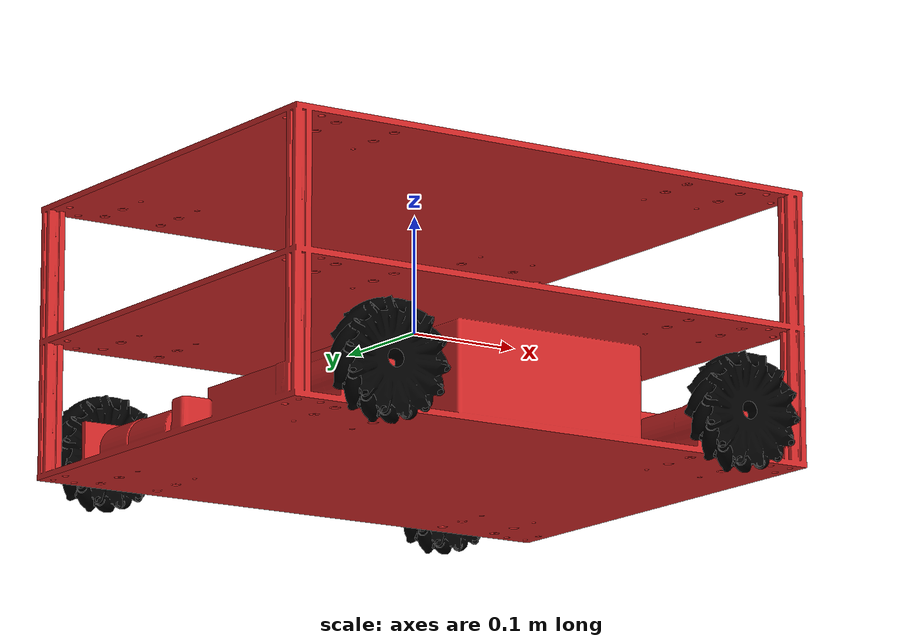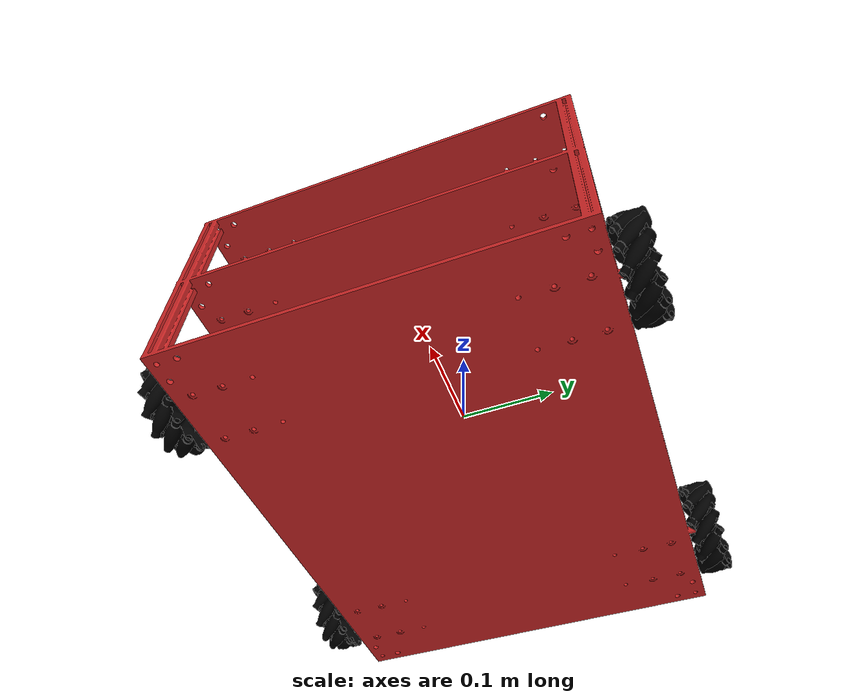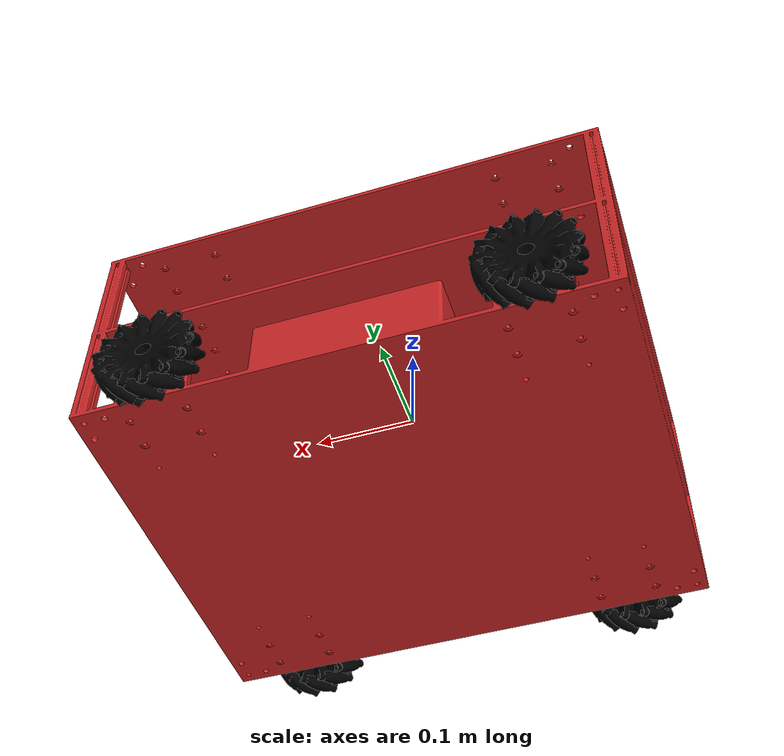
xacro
<?xml version="1.0" ?>
<robot xmlns:xacro="http://www.ros.org/wiki/xacro" name="qs_bot">

  <!-- colors -->
  <material name="black">
    <color rgba="0 0 0 1"/>
  </material>
  <material name="white">
    <color rgba="1 1 1 1"/>
  </material>
  <material name="green">
    <color rgba="0 1 0 1"/>
  </material>

  <xacro:macro name="Transmission_block" params="joint_name">
    <transmission name="${joint_name}_trans">
    <type>transmission_interface/SimpleTransmission</type>
      <joint name="${joint_name}">
        <hardwareInterface>PositionJointInterface</hardwareInterface>
      </joint>
    <actuator name="${joint_name}_motor">
      <mechanicalReduction>1</mechanicalReduction>
    </actuator>
    </transmission>
  </xacro:macro>

  <!-- xacro parameters -->
  <xacro:property name="joint_wheel_match" value="-0.053 0.02 -0.052" />
  <xacro:property name="center_to_left_dis" value="0.2175" />
  <xacro:property name="center_to_right_dis" value="-${center_to_left_dis}" />
  <xacro:property name="center_to_front_dis" value="0.176" />
  <xacro:property name="center_to_back_dis" value="-0.169" />
  <xacro:property name="wheel_mass" value="0.8" />
  <xacro:property name="wheel_height" value="-0.085" />
  <xacro:property name="wheel_width" value="0.046" />
  <xacro:property name="wheel_radius" value="0.0762" />
  <xacro:property name="PI" value="3.1415926535" />
  <xacro:macro name="cylinder_inertia" params ="m r h">
    <inertial>
      <mass value="${m}"/>
        <inertia ixx="${m*(3*r*r+h*h)/12}"  ixy="0.0" ixz="0.0"
            iyy="${m*(3*r*r+h*h)/12}"  iyz= "0.0"
            izz="${m*r*r/2}"/>
        </inertial>
  </xacro:macro>
  <xacro:macro name="default_inertial" params="mass">
    <inertial>
      <mass value="${mass}" />
        <inertia ixx="1" ixy="0" ixz="0" iyy="1" iyz="0" izz="1"/>
    </inertial>
  </xacro:macro>

  <xacro:macro name="omni_steering" params="">
    <gazebo>
      <plugin name="object_controller" filename="libqs_bot_planar_move.so">
        <commandTopic>cmd_vel</commandTopic>
        <odometryTopic>odom</odometryTopic>
        <odometryFrame>odom</odometryFrame>
        <odometryRate>50.0</odometryRate>
        <robotBaseFrame>base_link</robotBaseFrame>
        <publishTf>true</publishTf>
      </plugin>
    </gazebo>
  </xacro:macro>

  <!-- base link -->
  <link name="base_link">
    <visual>
      <origin rpy="0 0 0" xyz="-0.2476 -0.2193 -0.12"/>
      <geometry>
        <mesh filename="package://qsbot_simulation/meshes/base_frame.STL" scale="0.001 0.001 0.001"/>
      </geometry>
    </visual>
    <collision>
      <origin rpy="0 0 0" xyz="0 0 0"/>
      <geometry>
        <box size="0.48 0.48 0.225"/>
      </geometry>
    </collision>
    <xacro:default_inertial mass="13.617"/>
  </link>

  <gazebo reference="base_link">
    <material>Gazebo/Red</material>
  </gazebo>

  <xacro:macro name="wheel" params= "prefix suffix X Y Z">
    <link name= "${prefix}_${suffix}_wheel">
      <visual>
        <origin rpy= "${PI/2} 0 0" xyz= "${joint_wheel_match}"/>
        <geometry>
          <mesh filename="package://qsbot_simulation/meshes/mecanum_wheel.STL" scale="0.001 0.001 0.001"/>
        </geometry>
        <material name= "black"/>
      </visual>
      <collision>
        <origin rpy= "${PI/2} 0 0" xyz= "${joint_wheel_match}"/>
        <geometry>
          <mesh filename="package://qsbot_simulation/meshes/mecanum_wheel.STL" scale="0.001 0.001 0.001"/>
        </geometry>
      </collision>
      <xacro:cylinder_inertia m="${wheel_mass}" r="${wheel_radius}" h="${wheel_width}"/>
    </link>

    <gazebo reference ="${prefix}_${suffix}_wheel">
      <mu1>1.0</mu1>
      <mu2>1.0</mu2>
      <kp>10000000.0</kp>
      <kd>1.0</kd>
      <material>Gazebo/DarkGrey</material>
    </gazebo>

    <joint name="${prefix}_${suffix}_wheel_joint" type="continuous">
      <parent link= "base_link"/>
      <child link= "${prefix}_${suffix}_wheel"/>
      <origin xyz= "${X} ${Y} ${Z}" rpy="0 0 0"/>
      <axis xyz="0 1 0"/>
    </joint>

    <transmission name="${prefix}_${suffix}_wheel_trans">
      <type>transmission_interface/SimpleTransmission</type>
      <actuator name="${prefix}_${suffix}_wheel_motor">
      <hardwareInterface>EffortJointInterface</hardwareInterface>
      <mechanicalReduction>1</mechanicalReduction>
      </actuator>
      <joint name="${prefix}_${suffix}_wheel_joint">
      <hardwareInterface>VelocityJointInterface</hardwareInterface>
      </joint>
    </transmission>
  </xacro:macro>

  <xacro:wheel prefix="right" suffix="front" X="${center_to_front_dis}" Y="${center_to_right_dis}" Z="${wheel_height}"/>
  <xacro:wheel prefix="right" suffix="back" X="${center_to_back_dis}" Y="${center_to_right_dis}" Z="${wheel_height}"/>
  <xacro:wheel prefix="left" suffix="front" X="${center_to_front_dis}" Y="${center_to_left_dis}" Z="${wheel_height}"/>
  <xacro:wheel prefix="left" suffix="back" X="${center_to_back_dis}" Y="${center_to_left_dis}" Z="${wheel_height}"/>
  <xacro:omni_steering/>

  <!-- sensors -->
  <link name="laser_frame">
    <visual>
      <geometry>
        <!--mesh filename="package://qsbot_simulation/meshes/LiDAR.STL" scale="0.001 0.001 0.001"/-->
        <cylinder radius="0.05" length="0.04"/>
      </geometry>
      <material name="black"/>
    </visual>
    <collision>
      <geometry>
        <cylinder radius="0.05" length="0.04"/>
      </geometry>
    </collision>
  </link>

  <joint name="laser_joint" type="fixed">
    <axis xyz="0 1 0"/>
    <parent link="base_link"/>
    <child link="laser_frame"/>
    <origin rpy="0 0 0" xyz="0 0 0.135"/>
  </joint>

  <sensor name="rplidar" update_rate="20">
    <parent link="laser_frame"/>
    <origin xyz="0 0 0" rpy="0 0 0"/>
    <ray>
      <scan>
        <horizontal samples="360" resolution="2" min_angle="-3.14" max_angle="3.14"/>
      </scan>
    </ray>
  </sensor>

  <gazebo reference="laser_frame">
    <material>Gazebo/Blue</material>
    <turnGravityOff>false</turnGravityOff>
    <sensor name="laser" type="ray">
      <pose>0 0 0 0 0 0</pose>
      <visualize>true</visualize>
      <update_rate>40</update_rate>
      <ray>
        <scan>
          <horizontal>
            <samples>360</samples>
            <resolution>2</resolution>
            <min_angle>-3.14</min_angle>
            <max_angle>3.14</max_angle>
          </horizontal>
        </scan>
        <range>
          <min>0.5</min>
          <max>9</max>
        </range>
      </ray>
      <plugin name="gazebo_ros_head_rplidar_controller" filename="libgazebo_ros_laser.so">
        <ros>
          <argument>~/out:=scan</argument>
        </ros>
        <output_type>sensor_msgs/LaserScan</output_type>
        <frameName>laser_frame</frameName>
      </plugin>
    </sensor>
  </gazebo>

  <link name="imu_link">
    <visual>
      <origin rpy="0 0 -${PI/2}" xyz="0 0 0"/>
      <geometry>
        <box size="0.05 0.05 0.01"/>
      </geometry>
      <material name="green"/>
    </visual>
  </link>
  <joint name="imu_joint" type="fixed">
    <axis xyz="0 1 0"/>
    <parent link="base_link"/>
    <child link="imu_link"/>
    <origin rpy="0 0 0" xyz="0 0 0.007"/>
  </joint>

  <!-- gazebo -->

</robot>
